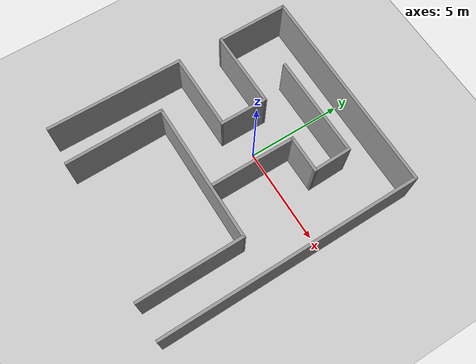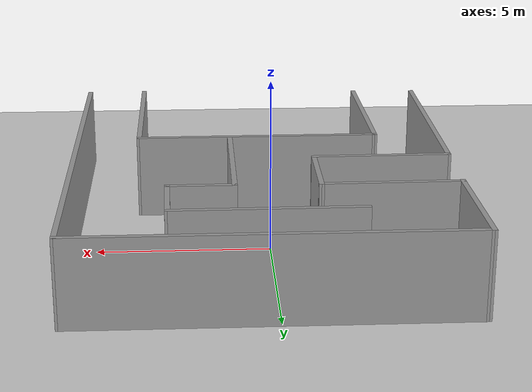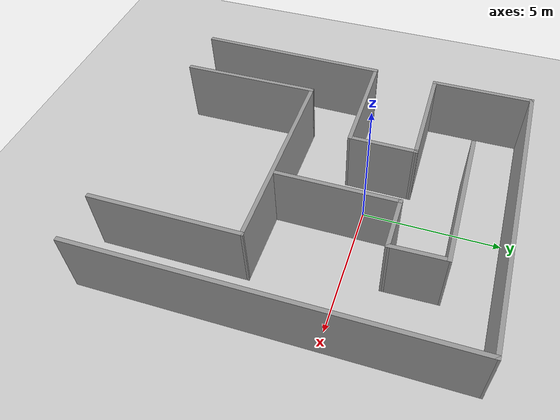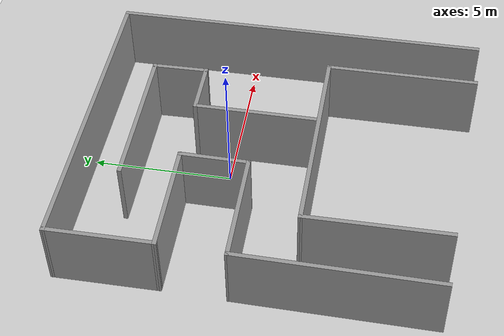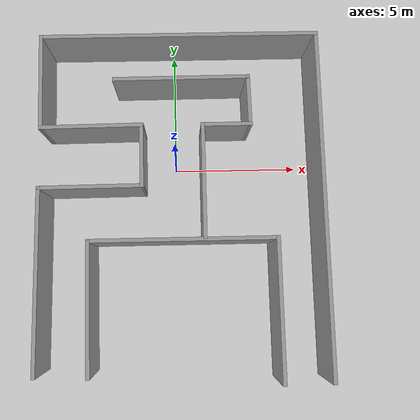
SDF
<sdf version="1.7">
 <world name="default">
  <light name="sun" type="directional">
   <pose>0 0 10 0 -0 0</pose>
   <diffuse>0.8 0.8 0.8 1</diffuse>
   <specular>0.2 0.2 0.2 1</specular>
   <attenuation>
    <range>1000</range>
    <constant>0.9</constant>
    <linear>0.01</linear>
    <quadratic>0.001</quadratic>
   </attenuation>
   <direction>-0.5 0.1 -0.9</direction>
   <spot><inner_angle>0</inner_angle><outer_angle>0</outer_angle><falloff>0</falloff></spot>
  </light>
  <model name="ground_plane">
   <static>1</static>
   <link name="link">
    <collision name="collision">
     <geometry><plane><normal>0 0 1</normal><size>100 100</size></plane></geometry>
     <surface>
      <contact><collide_bitmask>65535</collide_bitmask></contact>
      <friction><ode><mu>100</mu><mu2>50</mu2></ode></friction>
     </surface>
    </collision>
    <visual name="visual">
     <cast_shadows>0</cast_shadows>
     <geometry><plane><normal>0 0 1</normal><size>100 100</size></plane></geometry>
     <material>
      <script><uri>file://media/materials/scripts/gazebo.material</uri><name>Gazebo/Grey</name></script>
     </material>
    </visual>
   </link>
  </model>
  <gravity>0 0 -9.8</gravity>
  <magnetic_field>6e-06 2.3e-05 -4.2e-05</magnetic_field>
  <atmosphere type="adiabatic"/>
  <physics type="ode">
   <max_step_size>0.001</max_step_size>
   <real_time_factor>1</real_time_factor>
   <real_time_update_rate>1000</real_time_update_rate>
  </physics>
  <scene><ambient>0.4 0.4 0.4 1</ambient><background>0.7 0.7 0.7 1</background><shadows>1</shadows></scene>
  <spherical_coordinates>
   <surface_model>EARTH_WGS84</surface_model>
   <latitude_deg>0</latitude_deg>
   <longitude_deg>0</longitude_deg>
   <elevation>0</elevation>
   <heading_deg>0</heading_deg>
  </spherical_coordinates>
  <model name="race4">
   <pose>0.169794 -1.66994 0 0 -0 0</pose>
   <link name="Wall_0">
    <collision name="Wall_0_Collision">
     <geometry><box><size>7.16058 0.15 2.5</size></box></geometry>
     <pose>0 0 1.25 0 -0 0</pose>
    </collision>
    <visual name="Wall_0_Visual">
     <pose>0 0 1.25 0 -0 0</pose>
     <geometry><box><size>7.16058 0.15 2.5</size></box></geometry>
     <material>
      <script><uri>file://media/materials/scripts/gazebo.material</uri><name>Gazebo/Grey</name></script>
      <ambient>1 1 1 1</ambient>
     </material>
     <meta><layer>0</layer></meta>
    </visual>
    <pose>-5.48479 -2.82506 0 0 -0 1.56081</pose>
   </link>
   <link name="Wall_1">
    <collision name="Wall_1_Collision">
     <geometry><box><size>4.11011 0.15 2.5</size></box></geometry>
     <pose>0 0 1.25 0 -0 0</pose>
    </collision>
    <visual name="Wall_1_Visual">
     <pose>0 0 1.25 0 -0 0</pose>
     <geometry><box><size>4.11011 0.15 2.5</size></box></geometry>
     <material>
      <script><uri>file://media/materials/scripts/gazebo.material</uri><name>Gazebo/Grey</name></script>
      <ambient>1 1 1 1</ambient>
     </material>
     <meta><layer>0</layer></meta>
    </visual>
    <pose>-3.46979 0.694936 0 0 -0 0.007576</pose>
   </link>
   <link name="Wall_10">
    <collision name="Wall_10_Collision">
     <geometry><box><size>5.51004 0.15 2.5</size></box></geometry>
     <pose>0 0 1.25 0 -0 0</pose>
    </collision>
    <visual name="Wall_10_Visual">
     <pose>0 0 1.25 0 -0 0</pose>
     <geometry><box><size>5.51004 0.15 2.5</size></box></geometry>
     <material>
      <script><uri>file://media/materials/scripts/gazebo.material</uri><name>Gazebo/Grey</name></script>
      <ambient>1 1 1 1</ambient>
     </material>
     <meta><layer>0</layer></meta>
    </visual>
    <pose>3.67021 -4.05006 0 0 -0 -1.56706</pose>
   </link>
   <link name="Wall_12">
    <collision name="Wall_12_Collision">
     <geometry><box><size>5.39004 0.15 2.5</size></box></geometry>
     <pose>0 0 1.25 0 -0 0</pose>
    </collision>
    <visual name="Wall_12_Visual">
     <pose>0 0 1.25 0 -0 0</pose>
     <geometry><box><size>5.39004 0.15 2.5</size></box></geometry>
     <material>
      <script><uri>file://media/materials/scripts/gazebo.material</uri><name>Gazebo/Grey</name></script>
      <ambient>1 1 1 1</ambient>
     </material>
     <meta><layer>0</layer></meta>
    </visual>
    <pose>0.090206 4.94994 0 0 -0 0.003817</pose>
   </link>
   <link name="Wall_13">
    <collision name="Wall_13_Collision">
     <geometry><box><size>2.05042 0.15 2.5</size></box></geometry>
     <pose>0 0 1.25 0 -0 0</pose>
    </collision>
    <visual name="Wall_13_Visual">
     <pose>0 0 1.25 0 -0 0</pose>
     <geometry><box><size>2.05042 0.15 2.5</size></box></geometry>
     <material>
      <script><uri>file://media/materials/scripts/gazebo.material</uri><name>Gazebo/Grey</name></script>
      <ambient>1 1 1 1</ambient>
     </material>
     <meta><layer>0</layer></meta>
    </visual>
    <pose>2.73021 4.00994 0 0 -0 -1.54975</pose>
   </link>
   <link name="Wall_14">
    <collision name="Wall_14_Collision">
     <geometry><box><size>2 0.15 2.5</size></box></geometry>
     <pose>0 0 1.25 0 -0 0</pose>
    </collision>
    <visual name="Wall_14_Visual">
     <pose>0 0 1.25 0 -0 0</pose>
     <geometry><box><size>2 0.15 2.5</size></box></geometry>
     <material>
      <script><uri>file://media/materials/scripts/gazebo.material</uri><name>Gazebo/Grey</name></script>
      <ambient>1 1 1 1</ambient>
     </material>
     <meta><layer>0</layer></meta>
    </visual>
    <pose>1.82521 3.05994 0 0 -0 3.14159</pose>
   </link>
   <link name="Wall_15">
    <collision name="Wall_15_Collision">
     <geometry><box><size>4.5 0.15 2.5</size></box></geometry>
     <pose>0 0 1.25 0 -0 0</pose>
    </collision>
    <visual name="Wall_15_Visual">
     <pose>0 0 1.25 0 -0 0</pose>
     <geometry><box><size>4.5 0.15 2.5</size></box></geometry>
     <material>
      <script><uri>file://media/materials/scripts/gazebo.material</uri><name>Gazebo/Grey</name></script>
      <ambient>1 1 1 1</ambient>
     </material>
     <meta><layer>0</layer></meta>
    </visual>
    <pose>0.900206 0.884936 0 0 -0 -1.5708</pose>
   </link>
   <link name="Wall_2">
    <collision name="Wall_2_Collision">
     <geometry><box><size>2.53002 0.15 2.5</size></box></geometry>
     <pose>0 0 1.25 0 -0 0</pose>
    </collision>
    <visual name="Wall_2_Visual">
     <pose>0 0 1.25 0 -0 0</pose>
     <geometry><box><size>2.53002 0.15 2.5</size></box></geometry>
     <material>
      <script><uri>file://media/materials/scripts/gazebo.material</uri><name>Gazebo/Grey</name></script>
      <ambient>1 1 1 1</ambient>
     </material>
     <meta><layer>0</layer></meta>
    </visual>
    <pose>-1.48479 1.89994 0 0 -0 1.56659</pose>
   </link>
   <link name="Wall_3">
    <collision name="Wall_3_Collision">
     <geometry><box><size>4.0702 0.15 2.5</size></box></geometry>
     <pose>0 0 1.25 0 -0 0</pose>
    </collision>
    <visual name="Wall_3_Visual">
     <pose>0 0 1.25 0 -0 0</pose>
     <geometry><box><size>4.0702 0.15 2.5</size></box></geometry>
     <material>
      <script><uri>file://media/materials/scripts/gazebo.material</uri><name>Gazebo/Grey</name></script>
      <ambient>1 1 1 1</ambient>
     </material>
     <meta><layer>0</layer></meta>
    </visual>
    <pose>-3.43979 3.06994 0 0 -0 -3.13139</pose>
   </link>
   <link name="Wall_4">
    <collision name="Wall_4_Collision">
     <geometry><box><size>3.83005 0.15 2.5</size></box></geometry>
     <pose>0 0 1.25 0 -0 0</pose>
    </collision>
    <visual name="Wall_4_Visual">
     <pose>0 0 1.25 0 -0 0</pose>
     <geometry><box><size>3.83005 0.15 2.5</size></box></geometry>
     <material>
      <script><uri>file://media/materials/scripts/gazebo.material</uri><name>Gazebo/Grey</name></script>
      <ambient>1 1 1 1</ambient>
     </material>
     <meta><layer>0</layer></meta>
    </visual>
    <pose>-5.40979 4.88994 0 0 -0 1.57623</pose>
   </link>
   <link name="Wall_5">
    <collision name="Wall_5_Collision">
     <geometry><box><size>11.0301 0.15 2.5</size></box></geometry>
     <pose>0 0 1.25 0 -0 0</pose>
    </collision>
    <visual name="Wall_5_Visual">
     <pose>0 0 1.25 0 -0 0</pose>
     <geometry><box><size>11.0301 0.15 2.5</size></box></geometry>
     <material>
      <script><uri>file://media/materials/scripts/gazebo.material</uri><name>Gazebo/Grey</name></script>
      <ambient>1 1 1 1</ambient>
     </material>
     <meta><layer>0</layer></meta>
    </visual>
    <pose>0.020206 6.71494 0 0 -0 -0.002757</pose>
   </link>
   <link name="Wall_6">
    <collision name="Wall_6_Collision">
     <geometry><box><size>13.5601 0.15 2.5</size></box></geometry>
     <pose>0 0 1.25 0 -0 0</pose>
    </collision>
    <visual name="Wall_6_Visual">
     <pose>0 0 1.25 0 -0 0</pose>
     <geometry><box><size>13.5601 0.15 2.5</size></box></geometry>
     <material>
      <script><uri>file://media/materials/scripts/gazebo.material</uri><name>Gazebo/Grey</name></script>
      <ambient>1 1 1 1</ambient>
     </material>
     <meta><layer>0</layer></meta>
    </visual>
    <pose>5.49021 -0.005064 0 0 -0 -1.56632</pose>
   </link>
   <link name="Wall_8">
    <collision name="Wall_8_Collision">
     <geometry><box><size>5.16016 0.15 2.5</size></box></geometry>
     <pose>0 0 1.25 0 -0 0</pose>
    </collision>
    <visual name="Wall_8_Visual">
     <pose>0 0 1.25 0 -0 0</pose>
     <geometry><box><size>5.16016 0.15 2.5</size></box></geometry>
     <material>
      <script><uri>file://media/materials/scripts/gazebo.material</uri><name>Gazebo/Grey</name></script>
      <ambient>1 1 1 1</ambient>
     </material>
     <meta><layer>0</layer></meta>
    </visual>
    <pose>-3.53979 -3.88506 0 0 -0 1.57878</pose>
   </link>
   <link name="Wall_9">
    <collision name="Wall_9_Collision">
     <geometry><box><size>7.37001 0.15 2.5</size></box></geometry>
     <pose>0 0 1.25 0 -0 0</pose>
    </collision>
    <visual name="Wall_9_Visual">
     <pose>0 0 1.25 0 -0 0</pose>
     <geometry><box><size>7.37001 0.15 2.5</size></box></geometry>
     <material>
      <script><uri>file://media/materials/scripts/gazebo.material</uri><name>Gazebo/Grey</name></script>
      <ambient>1 1 1 1</ambient>
     </material>
     <meta><layer>0</layer></meta>
    </visual>
    <pose>0.050206 -1.37506 0 0 -0 0.001385</pose>
   </link>
   <static>1</static>
  </model>
 </world>
</sdf>
